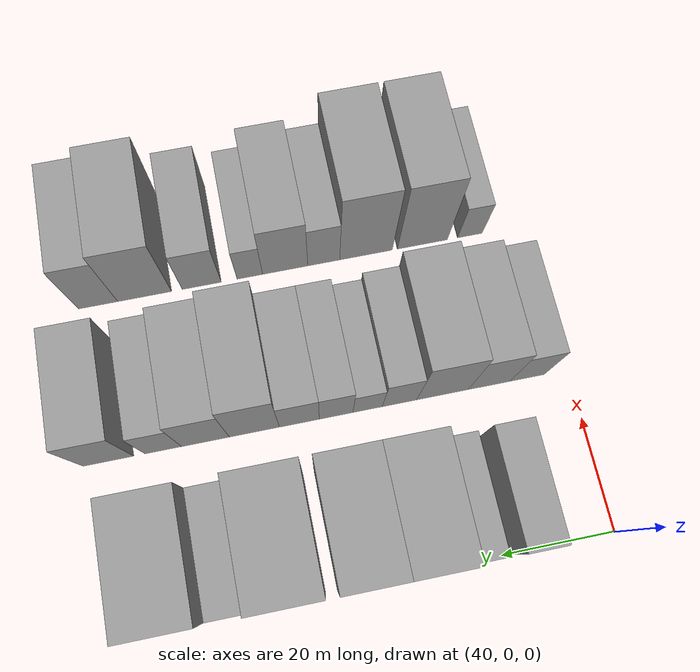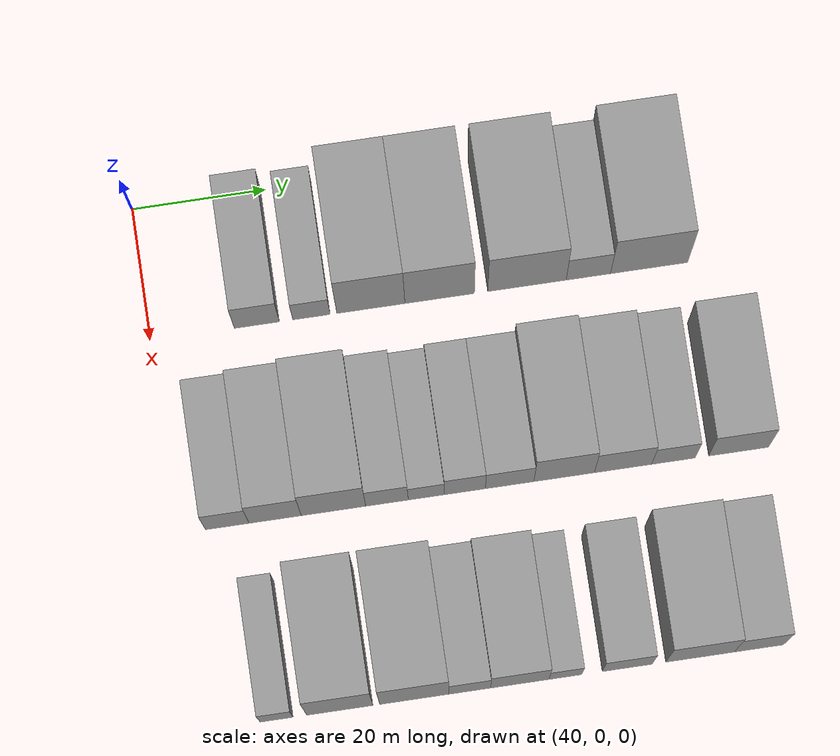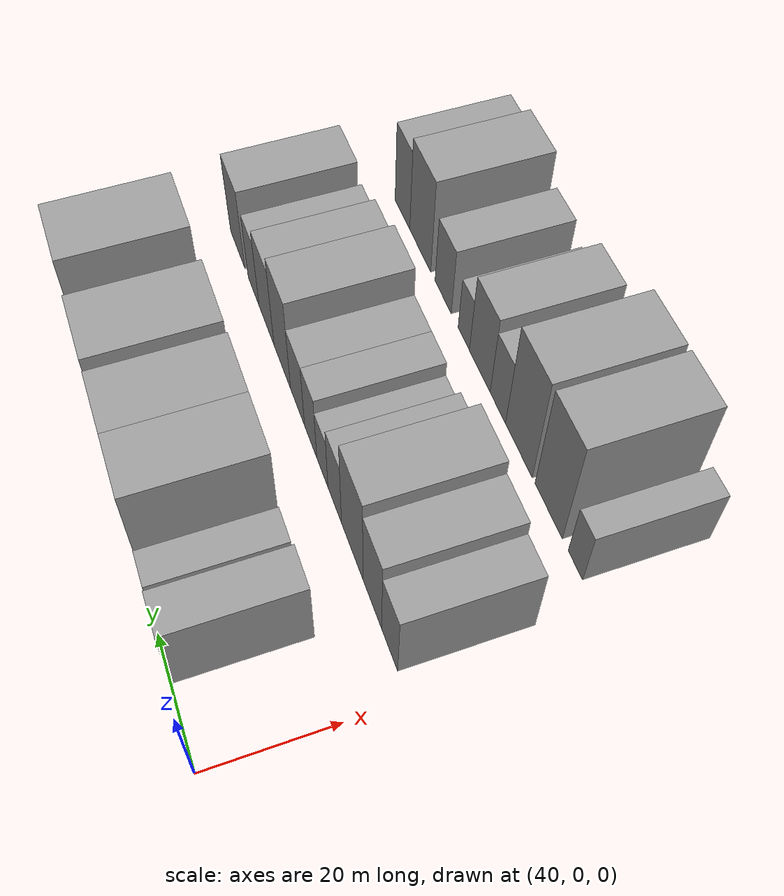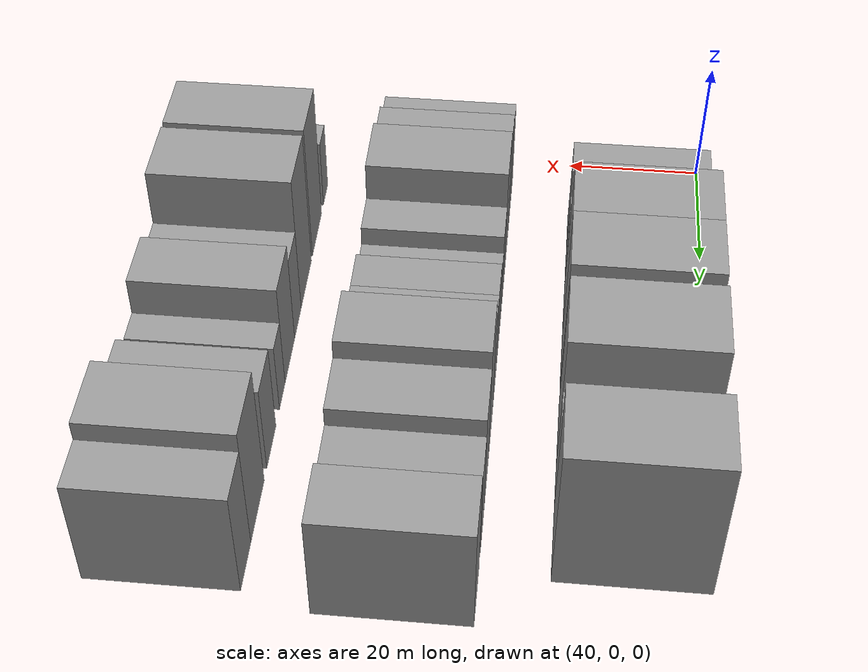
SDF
<sdf version="1.6">
 <world name="default">
  <model name="building_38">
   <static>1</static>
   <pose>50.0000 15.8936 0 0.000000 0.000000 0.000000</pose>
   <link name="link">
    <pose>0 0 7.50 0 0 0</pose>
    <collision name="collision"><geometry><box><size>20.0000 6.6982 15.0000</size></box></geometry></collision>
    <visual name="visual">
     <cast_shadows>0</cast_shadows>
     <geometry><box><size>20.0000 6.6982 15.0000</size></box></geometry>
     <material>
      <script>
       <uri>model://grey_wall/materials/scripts</uri>
       <uri>model://grey_wall/materials/textures</uri>
       <name>vrc/grey_wall</name>
      </script>
     </material>
    </visual>
   </link>
  </model>
  <model name="building_39">
   <static>1</static>
   <pose>50.0000 24.0264 0 0.000000 0.000000 0.000000</pose>
   <link name="link">
    <pose>0 0 6.00 0 0 0</pose>
    <collision name="collision"><geometry><box><size>20.0000 5.5673 12.0000</size></box></geometry></collision>
    <visual name="visual">
     <cast_shadows>0</cast_shadows>
     <geometry><box><size>20.0000 5.5673 12.0000</size></box></geometry>
     <material>
      <script>
       <uri>model://grey_wall/materials/scripts</uri>
       <uri>model://grey_wall/materials/textures</uri>
       <name>vrc/grey_wall</name>
      </script>
     </material>
    </visual>
   </link>
  </model>
  <model name="building_40">
   <static>1</static>
   <pose>50.0000 32.8881 0 0.000000 0.000000 0.000000</pose>
   <link name="link">
    <pose>0 0 12.00 0 0 0</pose>
    <collision name="collision"><geometry><box><size>20.0000 10.1561 24.0000</size></box></geometry></collision>
    <visual name="visual">
     <cast_shadows>0</cast_shadows>
     <geometry><box><size>20.0000 10.1561 24.0000</size></box></geometry>
     <material>
      <script>
       <uri>model://grey_wall/materials/scripts</uri>
       <uri>model://grey_wall/materials/textures</uri>
       <name>vrc/grey_wall</name>
      </script>
     </material>
    </visual>
   </link>
  </model>
  <model name="building_41">
   <static>1</static>
   <pose>50.0000 43.1462 0 0.000000 0.000000 0.000000</pose>
   <link name="link">
    <pose>0 0 12.00 0 0 0</pose>
    <collision name="collision"><geometry><box><size>20.0000 10.3601 24.0000</size></box></geometry></collision>
    <visual name="visual">
     <cast_shadows>0</cast_shadows>
     <geometry><box><size>20.0000 10.3601 24.0000</size></box></geometry>
     <material>
      <script>
       <uri>model://grey_wall/materials/scripts</uri>
       <uri>model://grey_wall/materials/textures</uri>
       <name>vrc/grey_wall</name>
      </script>
     </material>
    </visual>
   </link>
  </model>
  <model name="building_42">
   <static>1</static>
   <pose>50.0000 56.1803 0 0.000000 0.000000 0.000000</pose>
   <link name="link">
    <pose>0 0 12.00 0 0 0</pose>
    <collision name="collision"><geometry><box><size>20.0000 11.7080 24.0000</size></box></geometry></collision>
    <visual name="visual">
     <cast_shadows>0</cast_shadows>
     <geometry><box><size>20.0000 11.7080 24.0000</size></box></geometry>
     <material>
      <script>
       <uri>model://grey_wall/materials/scripts</uri>
       <uri>model://grey_wall/materials/textures</uri>
       <name>vrc/grey_wall</name>
      </script>
     </material>
    </visual>
   </link>
  </model>
  <model name="building_43">
   <static>1</static>
   <pose>50.0000 65.3462 0 0.000000 0.000000 0.000000</pose>
   <link name="link">
    <pose>0 0 7.50 0 0 0</pose>
    <collision name="collision"><geometry><box><size>20.0000 6.6238 15.0000</size></box></geometry></collision>
    <visual name="visual">
     <cast_shadows>0</cast_shadows>
     <geometry><box><size>20.0000 6.6238 15.0000</size></box></geometry>
     <material>
      <script>
       <uri>model://grey_wall/materials/scripts</uri>
       <uri>model://grey_wall/materials/textures</uri>
       <name>vrc/grey_wall</name>
      </script>
     </material>
    </visual>
   </link>
  </model>
  <model name="building_44">
   <static>1</static>
   <pose>50.0000 74.4359 0 0.000000 0.000000 0.000000</pose>
   <link name="link">
    <pose>0 0 12.00 0 0 0</pose>
    <collision name="collision"><geometry><box><size>20.0000 11.5555 24.0000</size></box></geometry></collision>
    <visual name="visual">
     <cast_shadows>0</cast_shadows>
     <geometry><box><size>20.0000 11.5555 24.0000</size></box></geometry>
     <material>
      <script>
       <uri>model://grey_wall/materials/scripts</uri>
       <uri>model://grey_wall/materials/textures</uri>
       <name>vrc/grey_wall</name>
      </script>
     </material>
    </visual>
   </link>
  </model>
  <model name="building_110">
   <static>1</static>
   <pose>79.0000 7.4887 0 0.000000 0.000000 0.000000</pose>
   <link name="link">
    <pose>0 0 7.50 0 0 0</pose>
    <collision name="collision"><geometry><box><size>20.0000 6.4288 15.0000</size></box></geometry></collision>
    <visual name="visual">
     <cast_shadows>0</cast_shadows>
     <geometry><box><size>20.0000 6.4288 15.0000</size></box></geometry>
     <material>
      <script>
       <uri>model://grey_wall/materials/scripts</uri>
       <uri>model://grey_wall/materials/textures</uri>
       <name>vrc/grey_wall</name>
      </script>
     </material>
    </visual>
   </link>
  </model>
  <model name="building_111">
   <static>1</static>
   <pose>79.0000 14.5579 0 0.000000 0.000000 0.000000</pose>
   <link name="link">
    <pose>0 0 9.00 0 0 0</pose>
    <collision name="collision"><geometry><box><size>20.0000 7.7095 18.0000</size></box></geometry></collision>
    <visual name="visual">
     <cast_shadows>0</cast_shadows>
     <geometry><box><size>20.0000 7.7095 18.0000</size></box></geometry>
     <material>
      <script>
       <uri>model://grey_wall/materials/scripts</uri>
       <uri>model://grey_wall/materials/textures</uri>
       <name>vrc/grey_wall</name>
      </script>
     </material>
    </visual>
   </link>
  </model>
  <model name="building_112">
   <static>1</static>
   <pose>79.0000 23.1753 0 0.000000 0.000000 0.000000</pose>
   <link name="link">
    <pose>0 0 10.50 0 0 0</pose>
    <collision name="collision"><geometry><box><size>20.0000 9.5252 21.0000</size></box></geometry></collision>
    <visual name="visual">
     <cast_shadows>0</cast_shadows>
     <geometry><box><size>20.0000 9.5252 21.0000</size></box></geometry>
     <material>
      <script>
       <uri>model://grey_wall/materials/scripts</uri>
       <uri>model://grey_wall/materials/textures</uri>
       <name>vrc/grey_wall</name>
      </script>
     </material>
    </visual>
   </link>
  </model>
  <model name="building_113">
   <static>1</static>
   <pose>79.0000 31.0862 0 0.000000 0.000000 0.000000</pose>
   <link name="link">
    <pose>0 0 7.50 0 0 0</pose>
    <collision name="collision"><geometry><box><size>20.0000 6.2967 15.0000</size></box></geometry></collision>
    <visual name="visual">
     <cast_shadows>0</cast_shadows>
     <geometry><box><size>20.0000 6.2967 15.0000</size></box></geometry>
     <material>
      <script>
       <uri>model://grey_wall/materials/scripts</uri>
       <uri>model://grey_wall/materials/textures</uri>
       <name>vrc/grey_wall</name>
      </script>
     </material>
    </visual>
   </link>
  </model>
  <model name="building_114">
   <static>1</static>
   <pose>79.0000 36.9077 0 0.000000 0.000000 0.000000</pose>
   <link name="link">
    <pose>0 0 6.00 0 0 0</pose>
    <collision name="collision"><geometry><box><size>20.0000 5.3462 12.0000</size></box></geometry></collision>
    <visual name="visual">
     <cast_shadows>0</cast_shadows>
     <geometry><box><size>20.0000 5.3462 12.0000</size></box></geometry>
     <material>
      <script>
       <uri>model://grey_wall/materials/scripts</uri>
       <uri>model://grey_wall/materials/textures</uri>
       <name>vrc/grey_wall</name>
      </script>
     </material>
    </visual>
   </link>
  </model>
  <model name="building_115">
   <static>1</static>
   <pose>79.0000 42.6156 0 0.000000 0.000000 0.000000</pose>
   <link name="link">
    <pose>0 0 7.50 0 0 0</pose>
    <collision name="collision"><geometry><box><size>20.0000 6.0697 15.0000</size></box></geometry></collision>
    <visual name="visual">
     <cast_shadows>0</cast_shadows>
     <geometry><box><size>20.0000 6.0697 15.0000</size></box></geometry>
     <material>
      <script>
       <uri>model://grey_wall/materials/scripts</uri>
       <uri>model://grey_wall/materials/textures</uri>
       <name>vrc/grey_wall</name>
      </script>
     </material>
    </visual>
   </link>
  </model>
  <model name="building_116">
   <static>1</static>
   <pose>79.0000 49.2344 0 0.000000 0.000000 0.000000</pose>
   <link name="link">
    <pose>0 0 7.50 0 0 0</pose>
    <collision name="collision"><geometry><box><size>20.0000 7.1678 15.0000</size></box></geometry></collision>
    <visual name="visual">
     <cast_shadows>0</cast_shadows>
     <geometry><box><size>20.0000 7.1678 15.0000</size></box></geometry>
     <material>
      <script>
       <uri>model://grey_wall/materials/scripts</uri>
       <uri>model://grey_wall/materials/textures</uri>
       <name>vrc/grey_wall</name>
      </script>
     </material>
    </visual>
   </link>
  </model>
  <model name="building_117">
   <static>1</static>
   <pose>79.0000 57.3023 0 0.000000 0.000000 0.000000</pose>
   <link name="link">
    <pose>0 0 10.50 0 0 0</pose>
    <collision name="collision"><geometry><box><size>20.0000 8.9681 21.0000</size></box></geometry></collision>
    <visual name="visual">
     <cast_shadows>0</cast_shadows>
     <geometry><box><size>20.0000 8.9681 21.0000</size></box></geometry>
     <material>
      <script>
       <uri>model://grey_wall/materials/scripts</uri>
       <uri>model://grey_wall/materials/textures</uri>
       <name>vrc/grey_wall</name>
      </script>
     </material>
    </visual>
   </link>
  </model>
  <model name="building_118">
   <static>1</static>
   <pose>79.0000 66.0440 0 0.000000 0.000000 0.000000</pose>
   <link name="link">
    <pose>0 0 9.00 0 0 0</pose>
    <collision name="collision"><geometry><box><size>20.0000 8.5152 18.0000</size></box></geometry></collision>
    <visual name="visual">
     <cast_shadows>0</cast_shadows>
     <geometry><box><size>20.0000 8.5152 18.0000</size></box></geometry>
     <material>
      <script>
       <uri>model://grey_wall/materials/scripts</uri>
       <uri>model://grey_wall/materials/textures</uri>
       <name>vrc/grey_wall</name>
      </script>
     </material>
    </visual>
   </link>
  </model>
  <model name="building_119">
   <static>1</static>
   <pose>79.0000 73.5313 0 0.000000 0.000000 0.000000</pose>
   <link name="link">
    <pose>0 0 7.50 0 0 0</pose>
    <collision name="collision"><geometry><box><size>20.0000 6.4594 15.0000</size></box></geometry></collision>
    <visual name="visual">
     <cast_shadows>0</cast_shadows>
     <geometry><box><size>20.0000 6.4594 15.0000</size></box></geometry>
     <material>
      <script>
       <uri>model://grey_wall/materials/scripts</uri>
       <uri>model://grey_wall/materials/textures</uri>
       <name>vrc/grey_wall</name>
      </script>
     </material>
    </visual>
   </link>
  </model>
  <model name="building_120">
   <static>1</static>
   <pose>79.0000 83.2062 0 0.000000 0.000000 0.000000</pose>
   <link name="link">
    <pose>0 0 9.00 0 0 0</pose>
    <collision name="collision"><geometry><box><size>20.0000 8.8904 18.0000</size></box></geometry></collision>
    <visual name="visual">
     <cast_shadows>0</cast_shadows>
     <geometry><box><size>20.0000 8.8904 18.0000</size></box></geometry>
     <material>
      <script>
       <uri>model://grey_wall/materials/scripts</uri>
       <uri>model://grey_wall/materials/textures</uri>
       <name>vrc/grey_wall</name>
      </script>
     </material>
    </visual>
   </link>
  </model>
  <model name="building_182">
   <static>1</static>
   <pose>108.0000 10.7193 0 0.000000 0.000000 0.000000</pose>
   <link name="link">
    <pose>0 0 6.00 0 0 0</pose>
    <collision name="collision"><geometry><box><size>20.0000 4.8211 12.0000</size></box></geometry></collision>
    <visual name="visual">
     <cast_shadows>0</cast_shadows>
     <geometry><box><size>20.0000 4.8211 12.0000</size></box></geometry>
     <material>
      <script>
       <uri>model://grey_wall/materials/scripts</uri>
       <uri>model://grey_wall/materials/textures</uri>
       <name>vrc/grey_wall</name>
      </script>
     </material>
    </visual>
   </link>
  </model>
  <model name="building_183">
   <static>1</static>
   <pose>108.0000 19.9782 0 0.000000 0.000000 0.000000</pose>
   <link name="link">
    <pose>0 0 12.00 0 0 0</pose>
    <collision name="collision"><geometry><box><size>20.0000 9.6968 24.0000</size></box></geometry></collision>
    <visual name="visual">
     <cast_shadows>0</cast_shadows>
     <geometry><box><size>20.0000 9.6968 24.0000</size></box></geometry>
     <material>
      <script>
       <uri>model://grey_wall/materials/scripts</uri>
       <uri>model://grey_wall/materials/textures</uri>
       <name>vrc/grey_wall</name>
      </script>
     </material>
    </visual>
   </link>
  </model>
  <model name="building_184">
   <static>1</static>
   <pose>108.0000 30.8953 0 0.000000 0.000000 0.000000</pose>
   <link name="link">
    <pose>0 0 12.00 0 0 0</pose>
    <collision name="collision"><geometry><box><size>20.0000 10.1373 24.0000</size></box></geometry></collision>
    <visual name="visual">
     <cast_shadows>0</cast_shadows>
     <geometry><box><size>20.0000 10.1373 24.0000</size></box></geometry>
     <material>
      <script>
       <uri>model://grey_wall/materials/scripts</uri>
       <uri>model://grey_wall/materials/textures</uri>
       <name>vrc/grey_wall</name>
      </script>
     </material>
    </visual>
   </link>
  </model>
  <model name="building_185">
   <static>1</static>
   <pose>108.0000 39.0214 0 0.000000 0.000000 0.000000</pose>
   <link name="link">
    <pose>0 0 7.50 0 0 0</pose>
    <collision name="collision"><geometry><box><size>20.0000 6.1149 15.0000</size></box></geometry></collision>
    <visual name="visual">
     <cast_shadows>0</cast_shadows>
     <geometry><box><size>20.0000 6.1149 15.0000</size></box></geometry>
     <material>
      <script>
       <uri>model://grey_wall/materials/scripts</uri>
       <uri>model://grey_wall/materials/textures</uri>
       <name>vrc/grey_wall</name>
      </script>
     </material>
    </visual>
   </link>
  </model>
  <model name="building_186">
   <static>1</static>
   <pose>108.0000 46.3719 0 0.000000 0.000000 0.000000</pose>
   <link name="link">
    <pose>0 0 9.00 0 0 0</pose>
    <collision name="collision"><geometry><box><size>20.0000 8.5862 18.0000</size></box></geometry></collision>
    <visual name="visual">
     <cast_shadows>0</cast_shadows>
     <geometry><box><size>20.0000 8.5862 18.0000</size></box></geometry>
     <material>
      <script>
       <uri>model://grey_wall/materials/scripts</uri>
       <uri>model://grey_wall/materials/textures</uri>
       <name>vrc/grey_wall</name>
      </script>
     </material>
    </visual>
   </link>
  </model>
  <model name="building_187">
   <static>1</static>
   <pose>108.0000 53.0840 0 0.000000 0.000000 0.000000</pose>
   <link name="link">
    <pose>0 0 6.00 0 0 0</pose>
    <collision name="collision"><geometry><box><size>20.0000 4.8378 12.0000</size></box></geometry></collision>
    <visual name="visual">
     <cast_shadows>0</cast_shadows>
     <geometry><box><size>20.0000 4.8378 12.0000</size></box></geometry>
     <material>
      <script>
       <uri>model://grey_wall/materials/scripts</uri>
       <uri>model://grey_wall/materials/textures</uri>
       <name>vrc/grey_wall</name>
      </script>
     </material>
    </visual>
   </link>
  </model>
  <model name="building_188">
   <static>1</static>
   <pose>108.0000 62.1769 0 0.000000 0.000000 0.000000</pose>
   <link name="link">
    <pose>0 0 7.50 0 0 0</pose>
    <collision name="collision"><geometry><box><size>20.0000 7.3481 15.0000</size></box></geometry></collision>
    <visual name="visual">
     <cast_shadows>0</cast_shadows>
     <geometry><box><size>20.0000 7.3481 15.0000</size></box></geometry>
     <material>
      <script>
       <uri>model://grey_wall/materials/scripts</uri>
       <uri>model://grey_wall/materials/textures</uri>
       <name>vrc/grey_wall</name>
      </script>
     </material>
    </visual>
   </link>
  </model>
  <model name="building_189">
   <static>1</static>
   <pose>108.0000 72.8818 0 0.000000 0.000000 0.000000</pose>
   <link name="link">
    <pose>0 0 10.50 0 0 0</pose>
    <collision name="collision"><geometry><box><size>20.0000 10.0618 21.0000</size></box></geometry></collision>
    <visual name="visual">
     <cast_shadows>0</cast_shadows>
     <geometry><box><size>20.0000 10.0618 21.0000</size></box></geometry>
     <material>
      <script>
       <uri>model://grey_wall/materials/scripts</uri>
       <uri>model://grey_wall/materials/textures</uri>
       <name>vrc/grey_wall</name>
      </script>
     </material>
    </visual>
   </link>
  </model>
  <model name="building_190">
   <static>1</static>
   <pose>108.0000 81.5621 0 0.000000 0.000000 0.000000</pose>
   <link name="link">
    <pose>0 0 9.00 0 0 0</pose>
    <collision name="collision"><geometry><box><size>20.0000 7.2987 18.0000</size></box></geometry></collision>
    <visual name="visual">
     <cast_shadows>0</cast_shadows>
     <geometry><box><size>20.0000 7.2987 18.0000</size></box></geometry>
     <material>
      <script>
       <uri>model://grey_wall/materials/scripts</uri>
       <uri>model://grey_wall/materials/textures</uri>
       <name>vrc/grey_wall</name>
      </script>
     </material>
    </visual>
   </link>
  </model>
 </world>
</sdf>
